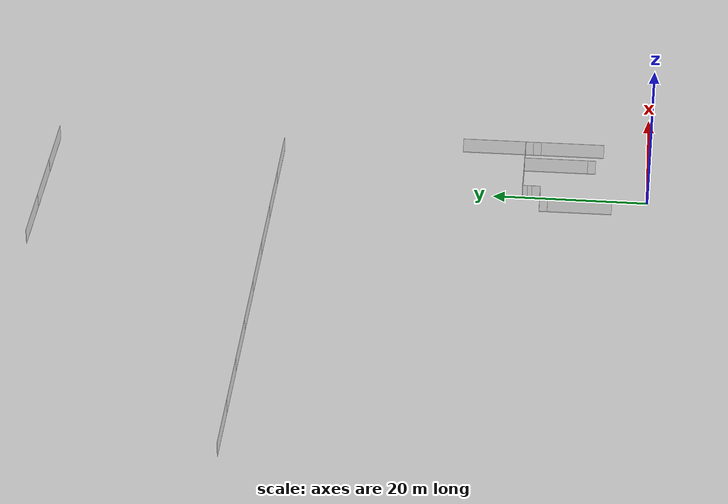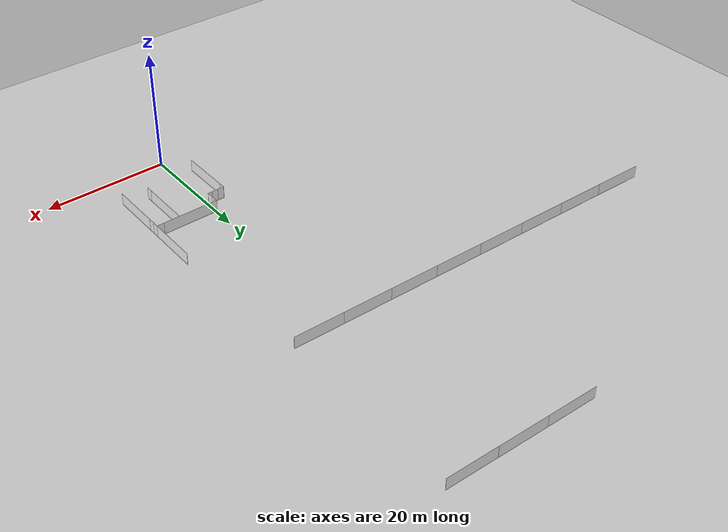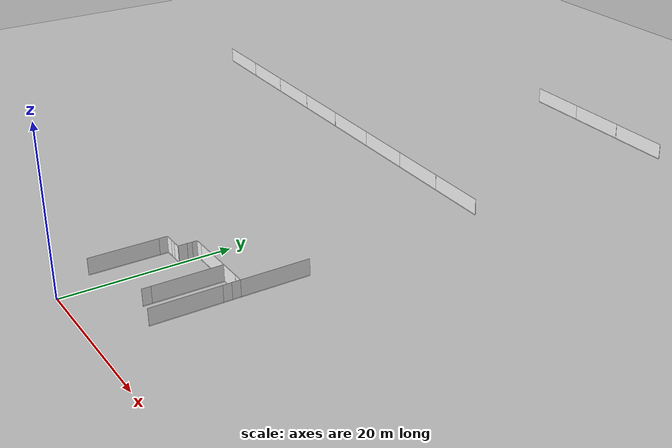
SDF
<sdf version="1.6">
 <world name="default">
  <model name="ground_plane">
   <static>1</static>
   <link name="link">
    <collision name="collision">
     <geometry><plane><normal>0 0 1</normal><size>100 100</size></plane></geometry>
     <surface><friction><ode><mu>100</mu><mu2>50</mu2></ode></friction></surface>
    </collision>
    <visual name="visual">
     <cast_shadows>0</cast_shadows>
     <geometry><plane><normal>0 0 1</normal><size>100 100</size></plane></geometry>
     <material>
      <script><uri>file://media/materials/scripts/gazebo.material</uri><name>Gazebo/Grey</name></script>
     </material>
    </visual>
    <velocity_decay><linear>0</linear><angular>0</angular></velocity_decay>
   </link>
  </model>
  <model name="full_wall_55_8295_2090_clone">
   <link name="link">
    <inertial>
     <mass>50</mass>
     <inertia><ixx>1</ixx><ixy>0</ixy><ixz>0</ixz><iyy>1</iyy><iyz>0</iyz><izz>1</izz></inertia>
    </inertial>
    <visual name="bottom_frame">
     <pose>0 0 0.05 0 -0 0</pose>
     <geometry><box><size>0.055 8.295 0.1</size></box></geometry>
     <material>
      <script><uri>model://base_materials/color/scripts</uri><name>hsr_color/white</name></script>
     </material>
    </visual>
    <collision name="collision_bottom_frame">
     <pose>0 0 0.05 0 -0 0</pose>
     <geometry><box><size>0.055 8.295 0.1</size></box></geometry>
    </collision>
    <visual name="wall">
     <pose>0 0 1.095 0 -0 0</pose>
     <geometry><box><size>0.055 8.295 1.99</size></box></geometry>
     <material>
      <script>
       <uri>model://base_materials/wall/scripts</uri>
       <uri>model://base_materials/wall/textures</uri>
       <name>wall/white_noise</name>
      </script>
     </material>
    </visual>
    <collision name="collision_wall">
     <pose>0 0 1.095 0 -0 0</pose>
     <geometry><box><size>0.055 8.295 1.99</size></box></geometry>
    </collision>
    <velocity_decay><linear>0</linear><angular>0</angular></velocity_decay>
   </link>
   <static>1</static>
   <pose>-3.00555 8.72228 0 0 -0 0</pose>
  </model>
  <model name="full_wall_55_900_2090">
   <link name="link">
    <inertial>
     <mass>50</mass>
     <inertia><ixx>1</ixx><ixy>0</ixy><ixz>0</ixz><iyy>1</iyy><iyz>0</iyz><izz>1</izz></inertia>
    </inertial>
    <visual name="bottom_frame">
     <pose>0 0 0.05 0 -0 0</pose>
     <geometry><box><size>0.055 1.04 0.1</size></box></geometry>
     <material>
      <script><uri>model://base_materials/color/scripts</uri><name>hsr_color/white</name></script>
     </material>
    </visual>
    <collision name="collision_bottom_frame">
     <pose>0 0 0.05 0 -0 0</pose>
     <geometry><box><size>0.055 1.04 0.1</size></box></geometry>
    </collision>
    <visual name="wall">
     <pose>0 0 1.095 0 -0 0</pose>
     <geometry><box><size>0.055 1.04 1.99</size></box></geometry>
     <material>
      <script>
       <uri>model://base_materials/wall/scripts</uri>
       <uri>model://base_materials/wall/textures</uri>
       <name>wall/white_noise</name>
      </script>
     </material>
    </visual>
    <collision name="collision_wall">
     <pose>0 0 1.095 0 -0 0</pose>
     <geometry><box><size>0.055 1.04 1.99</size></box></geometry>
    </collision>
    <velocity_decay><linear>0</linear><angular>0</angular></velocity_decay>
   </link>
   <static>1</static>
   <pose>-3.01014 13.3927 0 0 -0 0</pose>
  </model>
  <model name="full_wall_55_900_2090_clone">
   <link name="link">
    <inertial>
     <mass>50</mass>
     <inertia><ixx>1</ixx><ixy>0</ixy><ixz>0</ixz><iyy>1</iyy><iyz>0</iyz><izz>1</izz></inertia>
    </inertial>
    <visual name="bottom_frame">
     <pose>0 0 0.05 0 -0 0</pose>
     <geometry><box><size>0.055 1.04 0.1</size></box></geometry>
     <material>
      <script><uri>model://base_materials/color/scripts</uri><name>hsr_color/white</name></script>
     </material>
    </visual>
    <collision name="collision_bottom_frame">
     <pose>0 0 0.05 0 -0 0</pose>
     <geometry><box><size>0.055 1.04 0.1</size></box></geometry>
    </collision>
    <visual name="wall">
     <pose>0 0 1.095 0 -0 0</pose>
     <geometry><box><size>0.055 1.04 1.99</size></box></geometry>
     <material>
      <script>
       <uri>model://base_materials/wall/scripts</uri>
       <uri>model://base_materials/wall/textures</uri>
       <name>wall/white_noise</name>
      </script>
     </material>
    </visual>
    <collision name="collision_wall">
     <pose>0 0 1.095 0 -0 0</pose>
     <geometry><box><size>0.055 1.04 1.99</size></box></geometry>
    </collision>
    <velocity_decay><linear>0</linear><angular>0</angular></velocity_decay>
   </link>
   <static>1</static>
   <pose>-2.45128 13.9047 -0.00246 0 0 -1.56434</pose>
  </model>
  <model name="full_wall_55_900_2090_clone_clone">
   <link name="link">
    <inertial>
     <mass>50</mass>
     <inertia><ixx>1</ixx><ixy>0</ixy><ixz>0</ixz><iyy>1</iyy><iyz>0</iyz><izz>1</izz></inertia>
    </inertial>
    <visual name="bottom_frame">
     <pose>0 0 0.05 0 -0 0</pose>
     <geometry><box><size>0.055 1.04 0.1</size></box></geometry>
     <material>
      <script><uri>model://base_materials/color/scripts</uri><name>hsr_color/white</name></script>
     </material>
    </visual>
    <collision name="collision_bottom_frame">
     <pose>0 0 0.05 0 -0 0</pose>
     <geometry><box><size>0.055 1.04 0.1</size></box></geometry>
    </collision>
    <visual name="wall">
     <pose>0 0 1.095 0 -0 0</pose>
     <geometry><box><size>0.055 1.04 1.99</size></box></geometry>
     <material>
      <script>
       <uri>model://base_materials/wall/scripts</uri>
       <uri>model://base_materials/wall/textures</uri>
       <name>wall/white_noise</name>
      </script>
     </material>
    </visual>
    <collision name="collision_wall">
     <pose>0 0 1.095 0 -0 0</pose>
     <geometry><box><size>0.055 1.04 1.99</size></box></geometry>
    </collision>
    <velocity_decay><linear>0</linear><angular>0</angular></velocity_decay>
   </link>
   <static>1</static>
   <pose>-1.41364 13.9135 -0.010067 0 0 -1.56434</pose>
  </model>
  <model name="full_wall_55_900_2090_clone_0">
   <link name="link">
    <inertial>
     <mass>50</mass>
     <inertia><ixx>1</ixx><ixy>0</ixy><ixz>0</ixz><iyy>1</iyy><iyz>0</iyz><izz>1</izz></inertia>
    </inertial>
    <visual name="bottom_frame">
     <pose>0 0 0.05 0 -0 0</pose>
     <geometry><box><size>0.055 1.04 0.1</size></box></geometry>
     <material>
      <script><uri>model://base_materials/color/scripts</uri><name>hsr_color/white</name></script>
     </material>
    </visual>
    <collision name="collision_bottom_frame">
     <pose>0 0 0.05 0 -0 0</pose>
     <geometry><box><size>0.055 1.04 0.1</size></box></geometry>
    </collision>
    <visual name="wall">
     <pose>0 0 1.095 0 -0 0</pose>
     <geometry><box><size>0.055 1.04 1.99</size></box></geometry>
     <material>
      <script>
       <uri>model://base_materials/wall/scripts</uri>
       <uri>model://base_materials/wall/textures</uri>
       <name>wall/white_noise</name>
      </script>
     </material>
    </visual>
    <collision name="collision_wall">
     <pose>0 0 1.095 0 -0 0</pose>
     <geometry><box><size>0.055 1.04 1.99</size></box></geometry>
    </collision>
    <velocity_decay><linear>0</linear><angular>0</angular></velocity_decay>
   </link>
   <static>1</static>
   <pose>-0.19817 14.4732 0 0 -0 0</pose>
  </model>
  <model name="full_wall_55_600_2090">
   <link name="link">
    <inertial>
     <mass>50</mass>
     <inertia><ixx>1</ixx><ixy>0</ixy><ixz>0</ixz><iyy>1</iyy><iyz>0</iyz><izz>1</izz></inertia>
    </inertial>
    <visual name="bottom_frame">
     <pose>0 0 0.05 0 -0 0</pose>
     <geometry><box><size>0.055 0.6 0.1</size></box></geometry>
     <material>
      <script><uri>model://base_materials/color/scripts</uri><name>hsr_color/white</name></script>
     </material>
    </visual>
    <collision name="collision_bottom_frame">
     <pose>0 0 0.05 0 -0 0</pose>
     <geometry><box><size>0.055 0.6 0.1</size></box></geometry>
    </collision>
    <visual name="wall">
     <pose>0 0 1.095 0 -0 0</pose>
     <geometry><box><size>0.055 0.6 1.99</size></box></geometry>
     <material>
      <script>
       <uri>model://base_materials/wall/scripts</uri>
       <uri>model://base_materials/wall/textures</uri>
       <name>wall/white_noise</name>
      </script>
     </material>
    </visual>
    <collision name="collision_wall">
     <pose>0 0 1.095 0 -0 0</pose>
     <geometry><box><size>0.055 0.6 1.99</size></box></geometry>
    </collision>
    <velocity_decay><linear>0</linear><angular>0</angular></velocity_decay>
   </link>
   <static>1</static>
   <pose>-0.19825 15.2907 0 0 -0 0</pose>
  </model>
  <model name="full_wall_55_900_2090_clone_clone_clone">
   <link name="link">
    <inertial>
     <mass>50</mass>
     <inertia><ixx>1</ixx><ixy>0</ixy><ixz>0</ixz><iyy>1</iyy><iyz>0</iyz><izz>1</izz></inertia>
    </inertial>
    <visual name="bottom_frame">
     <pose>0 0 0.05 0 -0 0</pose>
     <geometry><box><size>0.055 1.04 0.1</size></box></geometry>
     <material>
      <script><uri>model://base_materials/color/scripts</uri><name>hsr_color/white</name></script>
     </material>
    </visual>
    <collision name="collision_bottom_frame">
     <pose>0 0 0.05 0 -0 0</pose>
     <geometry><box><size>0.055 1.04 0.1</size></box></geometry>
    </collision>
    <visual name="wall">
     <pose>0 0 1.095 0 -0 0</pose>
     <geometry><box><size>0.055 1.04 1.99</size></box></geometry>
     <material>
      <script>
       <uri>model://base_materials/wall/scripts</uri>
       <uri>model://base_materials/wall/textures</uri>
       <name>wall/white_noise</name>
      </script>
     </material>
    </visual>
    <collision name="collision_wall">
     <pose>0 0 1.095 0 -0 0</pose>
     <geometry><box><size>0.055 1.04 1.99</size></box></geometry>
    </collision>
    <velocity_decay><linear>0</linear><angular>0</angular></velocity_decay>
   </link>
   <static>1</static>
   <pose>0.300147 16.2353 -0.010067 0 0 -1.56434</pose>
  </model>
  <model name="full_wall_55_8295_2090_clone_clone_0">
   <link name="link">
    <inertial>
     <mass>50</mass>
     <inertia><ixx>1</ixx><ixy>0</ixy><ixz>0</ixz><iyy>1</iyy><iyz>0</iyz><izz>1</izz></inertia>
    </inertial>
    <visual name="bottom_frame">
     <pose>0 0 0.05 0 -0 0</pose>
     <geometry><box><size>0.055 8.295 0.1</size></box></geometry>
     <material>
      <script><uri>model://base_materials/color/scripts</uri><name>hsr_color/white</name></script>
     </material>
    </visual>
    <collision name="collision_bottom_frame">
     <pose>0 0 0.05 0 -0 0</pose>
     <geometry><box><size>0.055 8.295 0.1</size></box></geometry>
    </collision>
    <visual name="wall">
     <pose>0 0 1.095 0 -0 0</pose>
     <geometry><box><size>0.055 8.295 1.99</size></box></geometry>
     <material>
      <script>
       <uri>model://base_materials/wall/scripts</uri>
       <uri>model://base_materials/wall/textures</uri>
       <name>wall/white_noise</name>
      </script>
     </material>
    </visual>
    <collision name="collision_wall">
     <pose>0 0 1.095 0 -0 0</pose>
     <geometry><box><size>0.055 8.295 1.99</size></box></geometry>
    </collision>
    <velocity_decay><linear>0</linear><angular>0</angular></velocity_decay>
   </link>
   <static>1</static>
   <pose>4.96886 16.2397 0 0 -0 1.5723</pose>
  </model>
  <model name="full_wall_55_600_2090_clone">
   <link name="link">
    <inertial>
     <mass>50</mass>
     <inertia><ixx>1</ixx><ixy>0</ixy><ixz>0</ixz><iyy>1</iyy><iyz>0</iyz><izz>1</izz></inertia>
    </inertial>
    <visual name="bottom_frame">
     <pose>0 0 0.05 0 -0 0</pose>
     <geometry><box><size>0.055 0.6 0.1</size></box></geometry>
     <material>
      <script><uri>model://base_materials/color/scripts</uri><name>hsr_color/white</name></script>
     </material>
    </visual>
    <collision name="collision_bottom_frame">
     <pose>0 0 0.05 0 -0 0</pose>
     <geometry><box><size>0.055 0.6 0.1</size></box></geometry>
    </collision>
    <visual name="wall">
     <pose>0 0 1.095 0 -0 0</pose>
     <geometry><box><size>0.055 0.6 1.99</size></box></geometry>
     <material>
      <script>
       <uri>model://base_materials/wall/scripts</uri>
       <uri>model://base_materials/wall/textures</uri>
       <name>wall/white_noise</name>
      </script>
     </material>
    </visual>
    <collision name="collision_wall">
     <pose>0 0 1.095 0 -0 0</pose>
     <geometry><box><size>0.055 0.6 1.99</size></box></geometry>
    </collision>
    <velocity_decay><linear>0</linear><angular>0</angular></velocity_decay>
   </link>
   <static>1</static>
   <pose>-0.202043 15.8892 0 0 -0 0</pose>
  </model>
  <model name="full_wall_55_900_2090_clone_clone_clone_clone">
   <link name="link">
    <inertial>
     <mass>50</mass>
     <inertia><ixx>1</ixx><ixy>0</ixy><ixz>0</ixz><iyy>1</iyy><iyz>0</iyz><izz>1</izz></inertia>
    </inertial>
    <visual name="bottom_frame">
     <pose>0 0 0.05 0 -0 0</pose>
     <geometry><box><size>0.055 1.04 0.1</size></box></geometry>
     <material>
      <script><uri>model://base_materials/color/scripts</uri><name>hsr_color/white</name></script>
     </material>
    </visual>
    <collision name="collision_bottom_frame">
     <pose>0 0 0.05 0 -0 0</pose>
     <geometry><box><size>0.055 1.04 0.1</size></box></geometry>
    </collision>
    <visual name="wall">
     <pose>0 0 1.095 0 -0 0</pose>
     <geometry><box><size>0.055 1.04 1.99</size></box></geometry>
     <material>
      <script>
       <uri>model://base_materials/wall/scripts</uri>
       <uri>model://base_materials/wall/textures</uri>
       <name>wall/white_noise</name>
      </script>
     </material>
    </visual>
    <collision name="collision_wall">
     <pose>0 0 1.095 0 -0 0</pose>
     <geometry><box><size>0.055 1.04 1.99</size></box></geometry>
    </collision>
    <velocity_decay><linear>0</linear><angular>0</angular></velocity_decay>
   </link>
   <static>1</static>
   <pose>-0.688198 13.9166 -0.010067 0 0 -1.56434</pose>
  </model>
  <model name="full_wall_55_8295_2090_0">
   <link name="link">
    <inertial>
     <mass>50</mass>
     <inertia><ixx>1</ixx><ixy>0</ixy><ixz>0</ixz><iyy>1</iyy><iyz>0</iyz><izz>1</izz></inertia>
    </inertial>
    <visual name="bottom_frame">
     <pose>0 0 0.05 0 -0 0</pose>
     <geometry><box><size>0.055 8.295 0.1</size></box></geometry>
     <material>
      <script><uri>model://base_materials/color/scripts</uri><name>hsr_color/white</name></script>
     </material>
    </visual>
    <collision name="collision_bottom_frame">
     <pose>0 0 0.05 0 -0 0</pose>
     <geometry><box><size>0.055 8.295 0.1</size></box></geometry>
    </collision>
    <visual name="wall">
     <pose>0 0 1.095 0 -0 0</pose>
     <geometry><box><size>0.055 8.295 1.99</size></box></geometry>
     <material>
      <script>
       <uri>model://base_materials/wall/scripts</uri>
       <uri>model://base_materials/wall/textures</uri>
       <name>wall/white_noise</name>
      </script>
     </material>
    </visual>
    <collision name="collision_wall">
     <pose>0 0 1.095 0 -0 0</pose>
     <geometry><box><size>0.055 8.295 1.99</size></box></geometry>
    </collision>
    <velocity_decay><linear>0</linear><angular>0</angular></velocity_decay>
   </link>
   <static>1</static>
   <pose>6.38003 12.0767 0 0 -0 0</pose>
  </model>
  <model name="full_wall_55_900_2090_clone_0_clone">
   <link name="link">
    <inertial>
     <mass>50</mass>
     <inertia><ixx>1</ixx><ixy>0</ixy><ixz>0</ixz><iyy>1</iyy><iyz>0</iyz><izz>1</izz></inertia>
    </inertial>
    <visual name="bottom_frame">
     <pose>0 0 0.05 0 -0 0</pose>
     <geometry><box><size>0.055 1.04 0.1</size></box></geometry>
     <material>
      <script><uri>model://base_materials/color/scripts</uri><name>hsr_color/white</name></script>
     </material>
    </visual>
    <collision name="collision_bottom_frame">
     <pose>0 0 0.05 0 -0 0</pose>
     <geometry><box><size>0.055 1.04 0.1</size></box></geometry>
    </collision>
    <visual name="wall">
     <pose>0 0 1.095 0 -0 0</pose>
     <geometry><box><size>0.055 1.04 1.99</size></box></geometry>
     <material>
      <script>
       <uri>model://base_materials/wall/scripts</uri>
       <uri>model://base_materials/wall/textures</uri>
       <name>wall/white_noise</name>
      </script>
     </material>
    </visual>
    <collision name="collision_wall">
     <pose>0 0 1.095 0 -0 0</pose>
     <geometry><box><size>0.055 1.04 1.99</size></box></geometry>
    </collision>
    <velocity_decay><linear>0</linear><angular>0</angular></velocity_decay>
   </link>
   <static>1</static>
   <pose>6.38058 7.40801 0 0 -0 0</pose>
  </model>
  <model name="full_wall_55_8295_2090_0_clone">
   <link name="link">
    <inertial>
     <mass>50</mass>
     <inertia><ixx>1</ixx><ixy>0</ixy><ixz>0</ixz><iyy>1</iyy><iyz>0</iyz><izz>1</izz></inertia>
    </inertial>
    <visual name="bottom_frame">
     <pose>0 0 0.05 0 -0 0</pose>
     <geometry><box><size>0.055 8.295 0.1</size></box></geometry>
     <material>
      <script><uri>model://base_materials/color/scripts</uri><name>hsr_color/white</name></script>
     </material>
    </visual>
    <collision name="collision_bottom_frame">
     <pose>0 0 0.05 0 -0 0</pose>
     <geometry><box><size>0.055 8.295 0.1</size></box></geometry>
    </collision>
    <visual name="wall">
     <pose>0 0 1.095 0 -0 0</pose>
     <geometry><box><size>0.055 8.295 1.99</size></box></geometry>
     <material>
      <script>
       <uri>model://base_materials/wall/scripts</uri>
       <uri>model://base_materials/wall/textures</uri>
       <name>wall/white_noise</name>
      </script>
     </material>
    </visual>
    <collision name="collision_wall">
     <pose>0 0 1.095 0 -0 0</pose>
     <geometry><box><size>0.055 8.295 1.99</size></box></geometry>
    </collision>
    <velocity_decay><linear>0</linear><angular>0</angular></velocity_decay>
   </link>
   <static>1</static>
   <pose>10.3086 10.0337 0 0 -0 0</pose>
  </model>
  <model name="full_wall_55_900_2090_clone_0_clone_clone_0">
   <link name="link">
    <inertial>
     <mass>50</mass>
     <inertia><ixx>1</ixx><ixy>0</ixy><ixz>0</ixz><iyy>1</iyy><iyz>0</iyz><izz>1</izz></inertia>
    </inertial>
    <visual name="bottom_frame">
     <pose>0 0 0.05 0 -0 0</pose>
     <geometry><box><size>0.055 1.04 0.1</size></box></geometry>
     <material>
      <script><uri>model://base_materials/color/scripts</uri><name>hsr_color/white</name></script>
     </material>
    </visual>
    <collision name="collision_bottom_frame">
     <pose>0 0 0.05 0 -0 0</pose>
     <geometry><box><size>0.055 1.04 0.1</size></box></geometry>
    </collision>
    <visual name="wall">
     <pose>0 0 1.095 0 -0 0</pose>
     <geometry><box><size>0.055 1.04 1.99</size></box></geometry>
     <material>
      <script>
       <uri>model://base_materials/wall/scripts</uri>
       <uri>model://base_materials/wall/textures</uri>
       <name>wall/white_noise</name>
      </script>
     </material>
    </visual>
    <collision name="collision_wall">
     <pose>0 0 1.095 0 -0 0</pose>
     <geometry><box><size>0.055 1.04 1.99</size></box></geometry>
    </collision>
    <velocity_decay><linear>0</linear><angular>0</angular></velocity_decay>
   </link>
   <static>1</static>
   <pose>10.2964 14.6983 0 0 -0 0</pose>
  </model>
  <model name="full_wall_55_900_2090_clone_0_clone_clone_clone">
   <link name="link">
    <inertial>
     <mass>50</mass>
     <inertia><ixx>1</ixx><ixy>0</ixy><ixz>0</ixz><iyy>1</iyy><iyz>0</iyz><izz>1</izz></inertia>
    </inertial>
    <visual name="bottom_frame">
     <pose>0 0 0.05 0 -0 0</pose>
     <geometry><box><size>0.055 1.04 0.1</size></box></geometry>
     <material>
      <script><uri>model://base_materials/color/scripts</uri><name>hsr_color/white</name></script>
     </material>
    </visual>
    <collision name="collision_bottom_frame">
     <pose>0 0 0.05 0 -0 0</pose>
     <geometry><box><size>0.055 1.04 0.1</size></box></geometry>
    </collision>
    <visual name="wall">
     <pose>0 0 1.095 0 -0 0</pose>
     <geometry><box><size>0.055 1.04 1.99</size></box></geometry>
     <material>
      <script>
       <uri>model://base_materials/wall/scripts</uri>
       <uri>model://base_materials/wall/textures</uri>
       <name>wall/white_noise</name>
      </script>
     </material>
    </visual>
    <collision name="collision_wall">
     <pose>0 0 1.095 0 -0 0</pose>
     <geometry><box><size>0.055 1.04 1.99</size></box></geometry>
    </collision>
    <velocity_decay><linear>0</linear><angular>0</angular></velocity_decay>
   </link>
   <static>1</static>
   <pose>10.2876 15.7375 0 0 -0 0</pose>
  </model>
  <model name="full_wall_55_1100_2090_clone_0">
   <link name="link">
    <inertial>
     <mass>50</mass>
     <inertia><ixx>1</ixx><ixy>0</ixy><ixz>0</ixz><iyy>1</iyy><iyz>0</iyz><izz>1</izz></inertia>
    </inertial>
    <visual name="bottom_frame">
     <pose>0 0 0.05 0 -0 0</pose>
     <geometry><box><size>0.055 1.1 0.1</size></box></geometry>
     <material>
      <script><uri>model://base_materials/color/scripts</uri><name>hsr_color/white</name></script>
     </material>
    </visual>
    <collision name="collision_bottom_frame">
     <pose>0 0 0.05 0 -0 0</pose>
     <geometry><box><size>0.055 1.1 0.1</size></box></geometry>
    </collision>
    <visual name="wall">
     <pose>0 0 1.095 0 -0 0</pose>
     <geometry><box><size>0.055 1.1 1.99</size></box></geometry>
     <material>
      <script>
       <uri>model://base_materials/wall/scripts</uri>
       <uri>model://base_materials/wall/textures</uri>
       <name>wall/white_noise</name>
      </script>
     </material>
    </visual>
    <collision name="collision_wall">
     <pose>0 0 1.095 0 -0 0</pose>
     <geometry><box><size>0.055 1.1 1.99</size></box></geometry>
    </collision>
    <velocity_decay><linear>0</linear><angular>0</angular></velocity_decay>
   </link>
   <static>1</static>
   <pose>9.65739 16.248 0 0 -0 1.56492</pose>
  </model>
  <model name="full_wall_55_8295_2090_clone_clone_1">
   <link name="link">
    <inertial>
     <mass>50</mass>
     <inertia><ixx>1</ixx><ixy>0</ixy><ixz>0</ixz><iyy>1</iyy><iyz>0</iyz><izz>1</izz></inertia>
    </inertial>
    <visual name="bottom_frame">
     <pose>0 0 0.05 0 -0 0</pose>
     <geometry><box><size>0.055 8.295 0.1</size></box></geometry>
     <material>
      <script><uri>model://base_materials/color/scripts</uri><name>hsr_color/white</name></script>
     </material>
    </visual>
    <collision name="collision_bottom_frame">
     <pose>0 0 0.05 0 -0 0</pose>
     <geometry><box><size>0.055 8.295 0.1</size></box></geometry>
    </collision>
    <visual name="wall">
     <pose>0 0 1.095 0 -0 0</pose>
     <geometry><box><size>0.055 8.295 1.99</size></box></geometry>
     <material>
      <script>
       <uri>model://base_materials/wall/scripts</uri>
       <uri>model://base_materials/wall/textures</uri>
       <name>wall/white_noise</name>
      </script>
     </material>
    </visual>
    <collision name="collision_wall">
     <pose>0 0 1.095 0 -0 0</pose>
     <geometry><box><size>0.055 8.295 1.99</size></box></geometry>
    </collision>
    <velocity_decay><linear>0</linear><angular>0</angular></velocity_decay>
   </link>
   <static>1</static>
   <pose>10.3025 20.3737 0 0 -0 0</pose>
  </model>
  <model name="full_wall_55_8295_2090_clone_clone_0_clone_clone_0_clone_clone_0_clone_1">
   <link name="link">
    <inertial>
     <mass>50</mass>
     <inertia><ixx>1</ixx><ixy>0</ixy><ixz>0</ixz><iyy>1</iyy><iyz>0</iyz><izz>1</izz></inertia>
    </inertial>
    <visual name="bottom_frame">
     <pose>0 0 0.05 0 -0 0</pose>
     <geometry><box><size>0.055 8.295 0.1</size></box></geometry>
     <material>
      <script><uri>model://base_materials/color/scripts</uri><name>hsr_color/white</name></script>
     </material>
    </visual>
    <collision name="collision_bottom_frame">
     <pose>0 0 0.05 0 -0 0</pose>
     <geometry><box><size>0.055 8.295 0.1</size></box></geometry>
    </collision>
    <visual name="wall">
     <pose>0 0 1.095 0 -0 0</pose>
     <geometry><box><size>0.055 8.295 1.99</size></box></geometry>
     <material>
      <script>
       <uri>model://base_materials/wall/scripts</uri>
       <uri>model://base_materials/wall/textures</uri>
       <name>wall/white_noise</name>
      </script>
     </material>
    </visual>
    <collision name="collision_wall">
     <pose>0 0 1.095 0 -0 0</pose>
     <geometry><box><size>0.055 8.295 1.99</size></box></geometry>
    </collision>
    <velocity_decay><linear>0</linear><angular>0</angular></velocity_decay>
   </link>
   <static>1</static>
   <pose>4.4641 48.2934 0 0 -0 1.55369</pose>
  </model>
  <model name="full_wall_55_8295_2090_clone_clone_0_clone_clone_0_clone_clone_0_clone_3_clone_0">
   <link name="link">
    <inertial>
     <mass>50</mass>
     <inertia><ixx>1</ixx><ixy>0</ixy><ixz>0</ixz><iyy>1</iyy><iyz>0</iyz><izz>1</izz></inertia>
    </inertial>
    <visual name="bottom_frame">
     <pose>0 0 0.05 0 -0 0</pose>
     <geometry><box><size>0.055 8.295 0.1</size></box></geometry>
     <material>
      <script><uri>model://base_materials/color/scripts</uri><name>hsr_color/white</name></script>
     </material>
    </visual>
    <collision name="collision_bottom_frame">
     <pose>0 0 0.05 0 -0 0</pose>
     <geometry><box><size>0.055 8.295 0.1</size></box></geometry>
    </collision>
    <visual name="wall">
     <pose>0 0 1.095 0 -0 0</pose>
     <geometry><box><size>0.055 8.295 1.99</size></box></geometry>
     <material>
      <script>
       <uri>model://base_materials/wall/scripts</uri>
       <uri>model://base_materials/wall/textures</uri>
       <name>wall/white_noise</name>
      </script>
     </material>
    </visual>
    <collision name="collision_wall">
     <pose>0 0 1.095 0 -0 0</pose>
     <geometry><box><size>0.055 8.295 1.99</size></box></geometry>
    </collision>
    <velocity_decay><linear>0</linear><angular>0</angular></velocity_decay>
   </link>
   <static>1</static>
   <pose>-3.82099 48.4287 0 0 -0 1.55369</pose>
  </model>
  <model name="full_wall_55_8295_2090_clone_clone_0_clone_clone_0_clone_clone_0_clone_3_clone_1">
   <link name="link">
    <inertial>
     <mass>50</mass>
     <inertia><ixx>1</ixx><ixy>0</ixy><ixz>0</ixz><iyy>1</iyy><iyz>0</iyz><izz>1</izz></inertia>
    </inertial>
    <visual name="bottom_frame">
     <pose>0 0 0.05 0 -0 0</pose>
     <geometry><box><size>0.055 8.295 0.1</size></box></geometry>
     <material>
      <script><uri>model://base_materials/color/scripts</uri><name>hsr_color/white</name></script>
     </material>
    </visual>
    <collision name="collision_bottom_frame">
     <pose>0 0 0.05 0 -0 0</pose>
     <geometry><box><size>0.055 8.295 0.1</size></box></geometry>
    </collision>
    <visual name="wall">
     <pose>0 0 1.095 0 -0 0</pose>
     <geometry><box><size>0.055 8.295 1.99</size></box></geometry>
     <material>
      <script>
       <uri>model://base_materials/wall/scripts</uri>
       <uri>model://base_materials/wall/textures</uri>
       <name>wall/white_noise</name>
      </script>
     </material>
    </visual>
    <collision name="collision_wall">
     <pose>0 0 1.095 0 -0 0</pose>
     <geometry><box><size>0.055 8.295 1.99</size></box></geometry>
    </collision>
    <velocity_decay><linear>0</linear><angular>0</angular></velocity_decay>
   </link>
   <static>1</static>
   <pose>-12.1183 48.5668 0 0 -0 1.55369</pose>
  </model>
  <model name="full_wall_55_8295_2090_clone_clone_0_clone_clone_0_clone_clone_0_clone_3_clone_2">
   <link name="link">
    <inertial>
     <mass>50</mass>
     <inertia><ixx>1</ixx><ixy>0</ixy><ixz>0</ixz><iyy>1</iyy><iyz>0</iyz><izz>1</izz></inertia>
    </inertial>
    <visual name="bottom_frame">
     <pose>0 0 0.05 0 -0 0</pose>
     <geometry><box><size>0.055 8.295 0.1</size></box></geometry>
     <material>
      <script><uri>model://base_materials/color/scripts</uri><name>hsr_color/white</name></script>
     </material>
    </visual>
    <collision name="collision_bottom_frame">
     <pose>0 0 0.05 0 -0 0</pose>
     <geometry><box><size>0.055 8.295 0.1</size></box></geometry>
    </collision>
    <visual name="wall">
     <pose>0 0 1.095 0 -0 0</pose>
     <geometry><box><size>0.055 8.295 1.99</size></box></geometry>
     <material>
      <script>
       <uri>model://base_materials/wall/scripts</uri>
       <uri>model://base_materials/wall/textures</uri>
       <name>wall/white_noise</name>
      </script>
     </material>
    </visual>
    <collision name="collision_wall">
     <pose>0 0 1.095 0 -0 0</pose>
     <geometry><box><size>0.055 8.295 1.99</size></box></geometry>
    </collision>
    <velocity_decay><linear>0</linear><angular>0</angular></velocity_decay>
   </link>
   <static>1</static>
   <pose>-20.4292 48.7097 0 0 -0 1.55369</pose>
  </model>
  <model name="full_wall_55_8295_2090_clone_clone_0_clone_clone_0_clone_clone_0_clone_3_clone_3">
   <link name="link">
    <inertial>
     <mass>50</mass>
     <inertia><ixx>1</ixx><ixy>0</ixy><ixz>0</ixz><iyy>1</iyy><iyz>0</iyz><izz>1</izz></inertia>
    </inertial>
    <visual name="bottom_frame">
     <pose>0 0 0.05 0 -0 0</pose>
     <geometry><box><size>0.055 8.295 0.1</size></box></geometry>
     <material>
      <script><uri>model://base_materials/color/scripts</uri><name>hsr_color/white</name></script>
     </material>
    </visual>
    <collision name="collision_bottom_frame">
     <pose>0 0 0.05 0 -0 0</pose>
     <geometry><box><size>0.055 8.295 0.1</size></box></geometry>
    </collision>
    <visual name="wall">
     <pose>0 0 1.095 0 -0 0</pose>
     <geometry><box><size>0.055 8.295 1.99</size></box></geometry>
     <material>
      <script>
       <uri>model://base_materials/wall/scripts</uri>
       <uri>model://base_materials/wall/textures</uri>
       <name>wall/white_noise</name>
      </script>
     </material>
    </visual>
    <collision name="collision_wall">
     <pose>0 0 1.095 0 -0 0</pose>
     <geometry><box><size>0.055 8.295 1.99</size></box></geometry>
    </collision>
    <velocity_decay><linear>0</linear><angular>0</angular></velocity_decay>
   </link>
   <static>1</static>
   <pose>-28.7475 48.8461 0 0 -0 1.55369</pose>
  </model>
  <model name="full_wall_55_8295_2090_clone_clone_0_clone_clone_0_clone_clone_0_clone_3_clone_4">
   <link name="link">
    <inertial>
     <mass>50</mass>
     <inertia><ixx>1</ixx><ixy>0</ixy><ixz>0</ixz><iyy>1</iyy><iyz>0</iyz><izz>1</izz></inertia>
    </inertial>
    <visual name="bottom_frame">
     <pose>0 0 0.05 0 -0 0</pose>
     <geometry><box><size>0.055 8.295 0.1</size></box></geometry>
     <material>
      <script><uri>model://base_materials/color/scripts</uri><name>hsr_color/white</name></script>
     </material>
    </visual>
    <collision name="collision_bottom_frame">
     <pose>0 0 0.05 0 -0 0</pose>
     <geometry><box><size>0.055 8.295 0.1</size></box></geometry>
    </collision>
    <visual name="wall">
     <pose>0 0 1.095 0 -0 0</pose>
     <geometry><box><size>0.055 8.295 1.99</size></box></geometry>
     <material>
      <script>
       <uri>model://base_materials/wall/scripts</uri>
       <uri>model://base_materials/wall/textures</uri>
       <name>wall/white_noise</name>
      </script>
     </material>
    </visual>
    <collision name="collision_wall">
     <pose>0 0 1.095 0 -0 0</pose>
     <geometry><box><size>0.055 8.295 1.99</size></box></geometry>
    </collision>
    <velocity_decay><linear>0</linear><angular>0</angular></velocity_decay>
   </link>
   <static>1</static>
   <pose>-36.9903 48.9785 0 0 -0 1.55369</pose>
  </model>
  <model name="full_wall_55_8295_2090_clone_clone_0_clone_clone_0_clone_clone_0_clone_3_clone_5">
   <link name="link">
    <inertial>
     <mass>50</mass>
     <inertia><ixx>1</ixx><ixy>0</ixy><ixz>0</ixz><iyy>1</iyy><iyz>0</iyz><izz>1</izz></inertia>
    </inertial>
    <visual name="bottom_frame">
     <pose>0 0 0.05 0 -0 0</pose>
     <geometry><box><size>0.055 8.295 0.1</size></box></geometry>
     <material>
      <script><uri>model://base_materials/color/scripts</uri><name>hsr_color/white</name></script>
     </material>
    </visual>
    <collision name="collision_bottom_frame">
     <pose>0 0 0.05 0 -0 0</pose>
     <geometry><box><size>0.055 8.295 0.1</size></box></geometry>
    </collision>
    <visual name="wall">
     <pose>0 0 1.095 0 -0 0</pose>
     <geometry><box><size>0.055 8.295 1.99</size></box></geometry>
     <material>
      <script>
       <uri>model://base_materials/wall/scripts</uri>
       <uri>model://base_materials/wall/textures</uri>
       <name>wall/white_noise</name>
      </script>
     </material>
    </visual>
    <collision name="collision_wall">
     <pose>0 0 1.095 0 -0 0</pose>
     <geometry><box><size>0.055 8.295 1.99</size></box></geometry>
    </collision>
    <velocity_decay><linear>0</linear><angular>0</angular></velocity_decay>
   </link>
   <static>1</static>
   <pose>-45.2588 49.1145 0 0 -0 1.55369</pose>
  </model>
  <model name="full_wall_55_8295_2090_clone_clone_0_clone_clone_0_clone_clone_0_clone_3_clone_6">
   <link name="link">
    <inertial>
     <mass>50</mass>
     <inertia><ixx>1</ixx><ixy>0</ixy><ixz>0</ixz><iyy>1</iyy><iyz>0</iyz><izz>1</izz></inertia>
    </inertial>
    <visual name="bottom_frame">
     <pose>0 0 0.05 0 -0 0</pose>
     <geometry><box><size>0.055 8.295 0.1</size></box></geometry>
     <material>
      <script><uri>model://base_materials/color/scripts</uri><name>hsr_color/white</name></script>
     </material>
    </visual>
    <collision name="collision_bottom_frame">
     <pose>0 0 0.05 0 -0 0</pose>
     <geometry><box><size>0.055 8.295 0.1</size></box></geometry>
    </collision>
    <visual name="wall">
     <pose>0 0 1.095 0 -0 0</pose>
     <geometry><box><size>0.055 8.295 1.99</size></box></geometry>
     <material>
      <script>
       <uri>model://base_materials/wall/scripts</uri>
       <uri>model://base_materials/wall/textures</uri>
       <name>wall/white_noise</name>
      </script>
     </material>
    </visual>
    <collision name="collision_wall">
     <pose>0 0 1.095 0 -0 0</pose>
     <geometry><box><size>0.055 8.295 1.99</size></box></geometry>
    </collision>
    <velocity_decay><linear>0</linear><angular>0</angular></velocity_decay>
   </link>
   <static>1</static>
   <pose>-53.5511 49.2545 0 0 -0 1.55369</pose>
  </model>
  <model name="full_wall_55_8295_2090_clone_clone_0_clone_clone_0_clone_clone_0_clone_4_clone_2">
   <link name="link">
    <inertial>
     <mass>50</mass>
     <inertia><ixx>1</ixx><ixy>0</ixy><ixz>0</ixz><iyy>1</iyy><iyz>0</iyz><izz>1</izz></inertia>
    </inertial>
    <visual name="bottom_frame">
     <pose>0 0 0.05 0 -0 0</pose>
     <geometry><box><size>0.055 8.295 0.1</size></box></geometry>
     <material>
      <script><uri>model://base_materials/color/scripts</uri><name>hsr_color/white</name></script>
     </material>
    </visual>
    <collision name="collision_bottom_frame">
     <pose>0 0 0.05 0 -0 0</pose>
     <geometry><box><size>0.055 8.295 0.1</size></box></geometry>
    </collision>
    <visual name="wall">
     <pose>0 0 1.095 0 -0 0</pose>
     <geometry><box><size>0.055 8.295 1.99</size></box></geometry>
     <material>
      <script>
       <uri>model://base_materials/wall/scripts</uri>
       <uri>model://base_materials/wall/textures</uri>
       <name>wall/white_noise</name>
      </script>
     </material>
    </visual>
    <collision name="collision_wall">
     <pose>0 0 1.095 0 -0 0</pose>
     <geometry><box><size>0.055 8.295 1.99</size></box></geometry>
    </collision>
    <velocity_decay><linear>0</linear><angular>0</angular></velocity_decay>
   </link>
   <static>1</static>
   <pose>4.74015 78.4748 0 0 -0 1.55369</pose>
  </model>
  <model name="full_wall_55_8295_2090_clone_clone_0_clone_clone_0_clone_clone_0_clone_4_clone_4">
   <link name="link">
    <inertial>
     <mass>50</mass>
     <inertia><ixx>1</ixx><ixy>0</ixy><ixz>0</ixz><iyy>1</iyy><iyz>0</iyz><izz>1</izz></inertia>
    </inertial>
    <visual name="bottom_frame">
     <pose>0 0 0.05 0 -0 0</pose>
     <geometry><box><size>0.055 8.295 0.1</size></box></geometry>
     <material>
      <script><uri>model://base_materials/color/scripts</uri><name>hsr_color/white</name></script>
     </material>
    </visual>
    <collision name="collision_bottom_frame">
     <pose>0 0 0.05 0 -0 0</pose>
     <geometry><box><size>0.055 8.295 0.1</size></box></geometry>
    </collision>
    <visual name="wall">
     <pose>0 0 1.095 0 -0 0</pose>
     <geometry><box><size>0.055 8.295 1.99</size></box></geometry>
     <material>
      <script>
       <uri>model://base_materials/wall/scripts</uri>
       <uri>model://base_materials/wall/textures</uri>
       <name>wall/white_noise</name>
      </script>
     </material>
    </visual>
    <collision name="collision_wall">
     <pose>0 0 1.095 0 -0 0</pose>
     <geometry><box><size>0.055 8.295 1.99</size></box></geometry>
    </collision>
    <velocity_decay><linear>0</linear><angular>0</angular></velocity_decay>
   </link>
   <static>1</static>
   <pose>-3.61876 78.6377 0 0 -0 1.55369</pose>
  </model>
  <model name="full_wall_55_8295_2090_clone_clone_0_clone_clone_0_clone_clone_0_clone_4_clone_5">
   <link name="link">
    <inertial>
     <mass>50</mass>
     <inertia><ixx>1</ixx><ixy>0</ixy><ixz>0</ixz><iyy>1</iyy><iyz>0</iyz><izz>1</izz></inertia>
    </inertial>
    <visual name="bottom_frame">
     <pose>0 0 0.05 0 -0 0</pose>
     <geometry><box><size>0.055 8.295 0.1</size></box></geometry>
     <material>
      <script><uri>model://base_materials/color/scripts</uri><name>hsr_color/white</name></script>
     </material>
    </visual>
    <collision name="collision_bottom_frame">
     <pose>0 0 0.05 0 -0 0</pose>
     <geometry><box><size>0.055 8.295 0.1</size></box></geometry>
    </collision>
    <visual name="wall">
     <pose>0 0 1.095 0 -0 0</pose>
     <geometry><box><size>0.055 8.295 1.99</size></box></geometry>
     <material>
      <script>
       <uri>model://base_materials/wall/scripts</uri>
       <uri>model://base_materials/wall/textures</uri>
       <name>wall/white_noise</name>
      </script>
     </material>
    </visual>
    <collision name="collision_wall">
     <pose>0 0 1.095 0 -0 0</pose>
     <geometry><box><size>0.055 8.295 1.99</size></box></geometry>
    </collision>
    <velocity_decay><linear>0</linear><angular>0</angular></velocity_decay>
   </link>
   <static>1</static>
   <pose>-11.9107 78.7845 0 0 -0 1.55369</pose>
  </model>
 </world>
</sdf>
